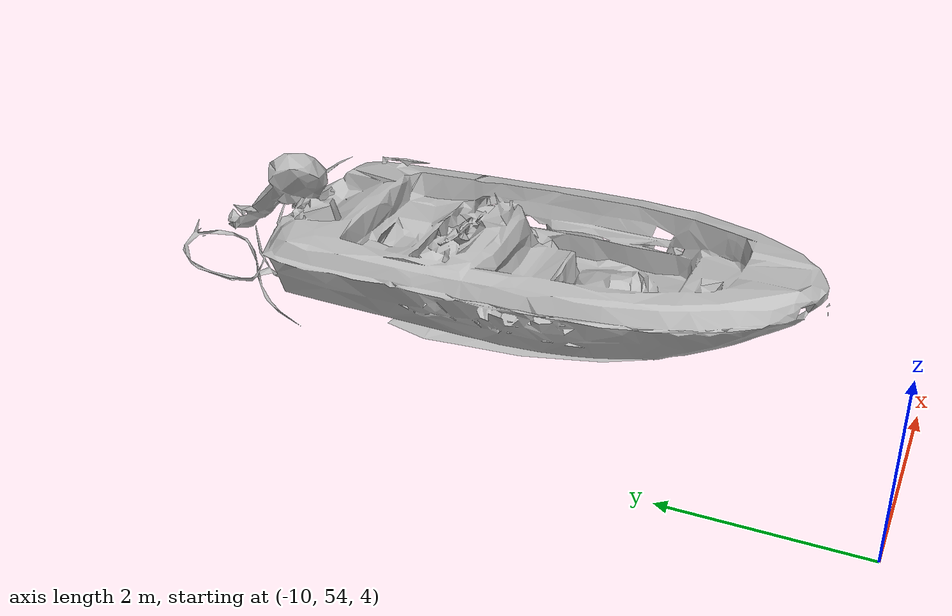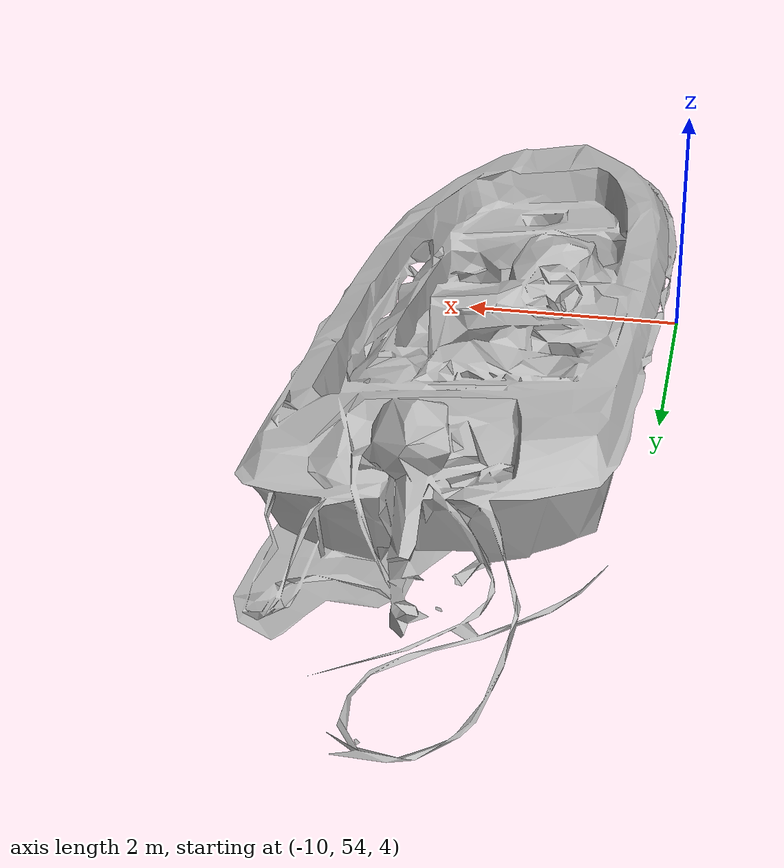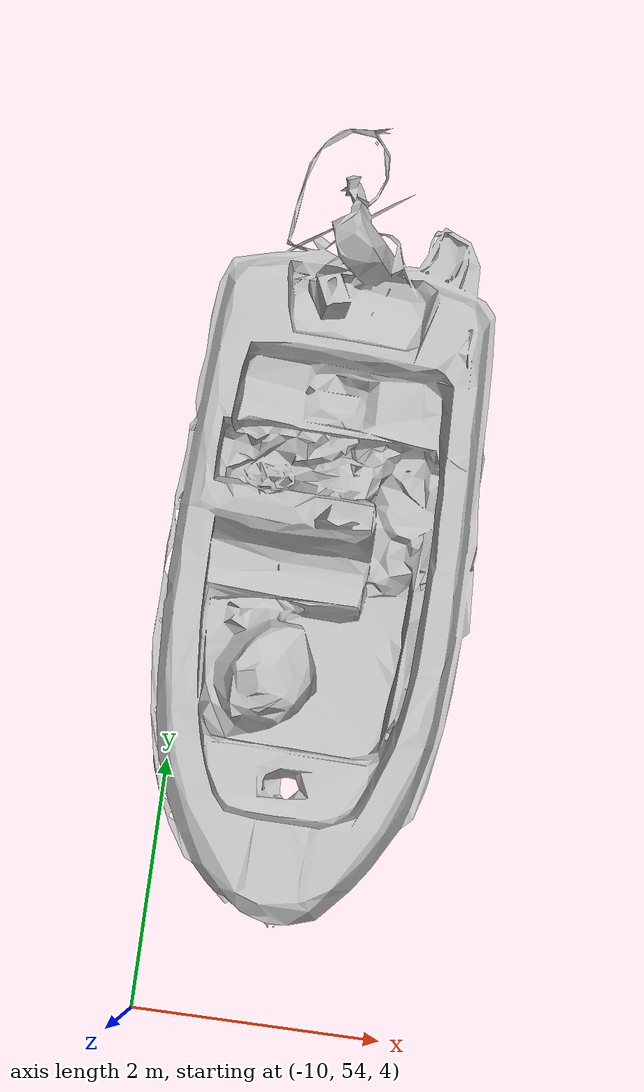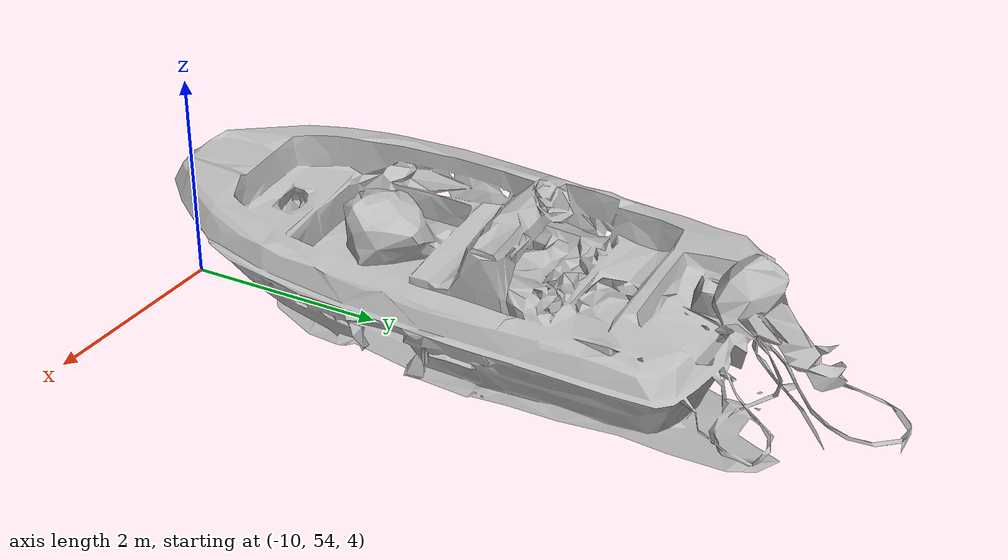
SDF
<?xml version="1.0" ?>

<sdf version="1.6">
  <world name="bugwright">

    <gui>
     <camera name="user_camera">
       <pose>92 45 36 0.0 0.296 -2.78</pose>
     </camera>
    </gui>

    <scene>
      <grid>false</grid>
      <origin_visual>true</origin_visual>
      <ambient>0.592 0.624 0.635 1</ambient>
      <sky>
        <clouds>
          <speed>12</speed>
        </clouds>
      </sky>
      <background>0.35 0.35 0.35 1.0</background>
    </scene>

    <!-- A global light source -->
    <light type="directional" name="sun">
      <pose>0 0 1000 0 0 0</pose>
      <cast_shadows>true</cast_shadows>
      <diffuse>0.8 0.8 0.8 1</diffuse>
      <specular>0.5 0.5 0.5 1</specular>
      <attenuation>
        <range>1000</range>
        <constant>0.9</constant>
        <linear>0.01</linear>
        <quadratic>0.001</quadratic>
      </attenuation>
      <direction>-0.5 0.1 -0.4</direction>
    </light>

    <!-- Environment -->

    <!-- boat -->
    <include>
      <name>boat</name>
      <pose> -9 57.5 5 0 0 0 </pose>
      <uri>model://boat</uri>
    </include>

  </world>
</sdf>

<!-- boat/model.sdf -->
<sdf version="1.9">
  <model name="boat">
    <static>true</static>
    <link name="link">
      <visual name="visual">
        <!-- Source OBJ is Y-up; rotate it into Gazebo's Z-up frame. -->
        <pose>0 0 0 1.57079632679 0 0</pose>
        <geometry>
          <mesh>
            <uri>model://cmra_models/boat/boat.obj</uri>
            <scale>0.1 0.1 0.1</scale>
          </mesh>
        </geometry>
      </visual>
    </link>
  </model>
</sdf>
